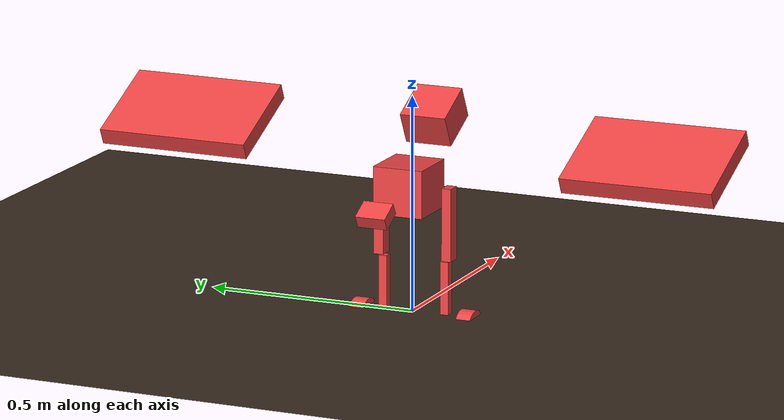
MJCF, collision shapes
<mujoco model="walking eagle we11 get-up pose alignment">
  <include file="we11.xml" />

  <statistic center="0 0 0.18" extent="0.8" />
  <visual>
    <headlight diffuse="0.6 0.6 0.6" ambient="0.3 0.3 0.3" specular="0 0 0" />
    <rgba haze="0.15 0.25 0.35 1" />
    <global azimuth="90" elevation="-10" />
  </visual>

  <asset>
    <texture type="skybox" builtin="gradient" rgb1="0.3 0.5 0.7" rgb2="0 0 0" width="512" height="3072" />
    <texture type="2d" name="getup_groundplane" builtin="checker" mark="edge" rgb1="0.28 0.22 0.16" rgb2="0.18 0.13 0.09" markrgb="0.8 0.8 0.8" width="300" height="300" />
    <material name="getup_groundplane" texture="getup_groundplane" texuniform="true" texrepeat="5 5" reflectance="0.1" />
  </asset>

  <worldbody>
    <light pos="0 0 1.5" dir="0 0 -1" directional="true" />
    <geom name="floor" size="0 0 0.05" type="plane" material="getup_groundplane" friction="1.0 0.005 0.0001" />

    <!-- Photo-like side view: robot forward (+X) appears on the left. -->
    <camera name="getup_side" pos="0 1.0 0.22" xyaxes="-1 0 0 0 0 1" />
    <camera name="getup_front" pos="1.0 0 0.22" xyaxes="0 1 0 0 0 1" />
  </worldbody>

  <keyframe>
    <!--
      Solved against the current reviewed collision geometry so the shoulder
      and both wheels start 0.5 mm inside the floor contact margin together.
    -->
    <key
      name="getup_start_v2"
      qpos="0 0 0.153467390616 0.791655677986 0 0.610967501191 0 -0.13 -2.522524368 0 -0.13 -2.522524368 0 0 0"
      ctrl="0 0 0 0 0 0 0 0"
    />
  </keyframe>
</mujoco>

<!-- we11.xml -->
<mujoco model="walking_eagle_we11_third">
  <compiler angle="radian" meshdir="meshes_lod" autolimits="true" inertiafromgeom="false" />
  <option timestep="0.001" gravity="0.0 0.0 -9.81" integrator="RK4" />
  <asset>
    <mesh name="base_link_part_00" file="base_link_part_00.STL" />
    <mesh name="base_link_part_01" file="base_link_part_01.STL" />
    <mesh name="base_link_part_02" file="base_link_part_02.STL" />
    <mesh name="base_link_part_03" file="base_link_part_03.STL" />
    <mesh name="base_link_part_04" file="base_link_part_04.STL" />
    <material name="base_link_material" rgba="0.75294 0.75294 0.75294 1.0" specular="0" />
    <mesh name="left_thigh_link" file="left_thigh_link.STL" />
    <material name="left_thigh_link_material" rgba="1.0 1.0 1.0 1.0" specular="0" />
    <mesh name="left_calf_link" file="left_calf_link.STL" />
    <material name="left_calf_link_material" rgba="1.0 0.94902 0.9098 1.0" specular="0" />
    <mesh name="left_foot_link" file="left_foot_link.STL" />
    <material name="left_foot_link_material" rgba="0.36863 0.36863 0.36863 1.0" specular="0" />
    <mesh name="right_thigh_link" file="right_thigh_link.STL" />
    <material name="right_thigh_link_material" rgba="0.86667 0.9098 1.0 1.0" specular="0" />
    <mesh name="right_calf_link" file="right_calf_link.STL" />
    <material name="right_calf_link_material" rgba="1.0 0.94902 0.9098 1.0" specular="0" />
    <mesh name="right_foot_link" file="right_foot_link.STL" />
    <material name="right_foot_link_material" rgba="0.36863 0.36863 0.36863 1.0" specular="0" />
    <mesh name="left_wing_link" file="left_wing_link.STL" />
    <material name="left_wing_link_material" rgba="0.79216 0.81961 0.93333 1.0" specular="0" />
    <mesh name="right_wing_link" file="right_wing_link.STL" />
    <material name="right_wing_link_material" rgba="0.79216 0.81961 0.93333 1.0" specular="0" />
    <mesh name="U1_link" file="U1_link.STL" />
    <material name="U1_link_material" rgba="0.29804 0.29804 0.29804 1.0" specular="0" />
    <mesh name="U2_link" file="U2_link.STL" />
    <material name="U2_link_material" rgba="1.0 1.0 1.0 1.0" specular="0" />
  </asset>
  <worldbody>
    <body name="base_link" pos="0 0 0.30">
      <inertial pos="0.04588263 3.771e-05 0.04501853" mass="1.79744014" fullinertia="0.01509778 0.02513929 0.01378862 1.56e-06 -0.01047094 -5.9e-07" />
      <freejoint name="base_freejoint" />
      <site name="imu" pos="0 0 0" />
      <geom name="base_link_visual_00" type="mesh" mesh="base_link_part_00" material="base_link_material" group="1" contype="0" conaffinity="0" />
      <geom name="base_link_visual_01" type="mesh" mesh="base_link_part_01" material="base_link_material" group="1" contype="0" conaffinity="0" />
      <geom name="base_link_visual_02" type="mesh" mesh="base_link_part_02" material="base_link_material" group="1" contype="0" conaffinity="0" />
      <geom name="base_link_visual_03" type="mesh" mesh="base_link_part_03" material="base_link_material" group="1" contype="0" conaffinity="0" />
      <geom name="base_link_visual_04" type="mesh" mesh="base_link_part_04" material="base_link_material" group="1" contype="0" conaffinity="0" />
      <geom name="base_link_collision" type="box" pos="-0.019765 0 -0.0045" rgba="0.9373 0.2667 0.2667 0.25" group="3" contype="1" conaffinity="1" size="0.063985 0.05915 0.055" />
      <site type="box" pos="-0.019765 0 -0.0045" rgba="1 0 0 0.15" size="0.063985 0.05915 0.055" name="base_link_touch_site" />
      <geom name="base_shoulder_collision" type="box" pos="0.123 0.0 0.129" quat="0.687569468466653 0.687569243772496 -0.165070861844035 0.165070807899729" rgba="0.9373 0.2667 0.2667 0.25" group="3" contype="1" conaffinity="1" size="0.055 0.04 0.055" />
      <site type="box" pos="0.123 0.0 0.129" quat="0.687569468466653 0.687569243772496 -0.165070861844035 0.165070807899729" rgba="1 0 0 0.15" size="0.055 0.04 0.055" name="base_shoulder_touch_site" />

      <body name="left_thigh_link" pos="0.01525 0.0558499999999976 -0.0431991909058736" quat="0.707106781186546 -0.707106781186549 0 0">
        <inertial pos="-0.00056472 0.01408423 0.04339388" mass="0.4724629" fullinertia="0.00084403 0.00023291 0.00069749 8.5e-06 -6.24e-06 0.00015111" />
        <joint name="left_thigh_joint" type="hinge" axis="0.0 0.0 1.0" damping="2.3658001235049574e-06" frictionloss="9.003633786813792e-06" armature="0.0045092746608505355" limited="true" range="-0.13 1.57" />
        <geom name="left_thigh_link_visual" type="mesh" mesh="left_thigh_link" material="left_thigh_link_material" group="1" contype="0" conaffinity="0" />
        <geom name="left_thigh_collision" type="box" pos="-0.000013 0.047495 0.0274" rgba="0.9373 0.2667 0.2667 0.25" group="3" contype="1" conaffinity="1" size="0.016454 0.0842 0.0114" />
        <site type="box" pos="-0.000013 0.047495 0.0274" rgba="1 0 0 0.15" size="0.016454 0.0842 0.0114" name="left_thigh_touch_site" />
        <body name="left_calf_link" pos="0 0.135800809094126 0.0199999999999967">
          <inertial pos="-2.777e-05 0.12275622 0.01133502" mass="0.30875" fullinertia="0.00078788 5.504e-05 0.00077188 3.9e-07 -1e-07 -9.686e-05" />
          <joint name="left_calf_joint" type="hinge" axis="0.0 0.0 1.0" damping="1.7025403002922656e-05" frictionloss="0.20614840564125578" armature="0.0056654868268008396" limited="true" range="-2.522524368 -1.285784060" />
          <geom name="left_calf_link_visual" type="mesh" mesh="left_calf_link" material="left_calf_link_material" group="1" contype="0" conaffinity="0" />
          <geom name="left_calf_shaft_collision" type="box" pos="0.0 0.078362 0.0" rgba="0.9373 0.2667 0.2667 0.25" group="3" contype="1" conaffinity="1" size="0.01 0.078638 0.01" />
          <site type="box" pos="0.0 0.078362 0.0" rgba="1 0 0 0.15" size="0.01 0.078638 0.01" name="left_calf_shaft_touch_site" />
          <body name="left_foot_link" pos="0 0.149999999999687 0.0572000000000056">
            <inertial pos="-6.05e-06 3.53e-06 -0.00262162" mass="0.12784" fullinertia="7.506e-05 7.507e-05 0.00012118 1e-08 1e-08 0.0" />
            <joint name="left_foot_joint" type="hinge" axis="0.0 0.0 1.0" damping="0.0" frictionloss="0.0" armature="0.0008" limited="false" />
            <geom name="left_foot_link_visual" type="mesh" mesh="left_foot_link" material="left_foot_link_material" group="1" contype="0" conaffinity="0" />
            <geom name="left_foot_collision" type="cylinder" pos="0.0 0.0 -0.001914845" rgba="0.9373 0.2667 0.2667 0.25" group="3" contype="1" conaffinity="1" size="0.0425 0.017285155" />
            <site type="cylinder" pos="0.0 0.0 -0.001914845" rgba="1 0 0 0.15" size="0.0425 0.017285155" name="left_foot_touch_site" />
          </body>
        </body>
      </body>

      <body name="right_thigh_link" pos="0.0152499999999884 -0.05585 -0.0431991909058702" quat="0.707106781186546 0.707106781186549 0 0">
        <inertial pos="-0.0005647199999883994 -0.014084230000003398 0.043393879999997616" mass="0.4724629" fullinertia="0.00084403 0.00023291 0.00069749 -8.5e-06 -6.24e-06 -0.00015111" />
        <joint name="right_thigh_joint" type="hinge" axis="0.0 0.0 -1.0" damping="2.3658001235049574e-06" frictionloss="9.003633786813792e-06" armature="0.0045092746608505355" limited="true" range="-0.13 1.57" />
        <geom name="right_thigh_link_visual" type="mesh" mesh="right_thigh_link" material="right_thigh_link_material" group="1" contype="0" conaffinity="0" />
        <geom name="right_thigh_collision" type="box" pos="-0.000013 -0.047495 0.0274" rgba="0.9373 0.2667 0.2667 0.25" group="3" contype="1" conaffinity="1" size="0.016454 0.0842 0.0114" />
        <site type="box" pos="-0.000013 -0.047495 0.0274" rgba="1 0 0 0.15" size="0.016454 0.0842 0.0114" name="right_thigh_touch_site" />
        <body name="right_calf_link" pos="0 -0.13580080909413 0.02">
          <inertial pos="-2.7769999988399782e-05 -0.12275621999999943 0.011335019999994296" mass="0.30875" fullinertia="0.00078788 5.504e-05 0.00077188 -3.9e-07 -1e-07 9.686e-05" />
          <joint name="right_calf_joint" type="hinge" axis="0.0 0.0 -1.0" damping="1.7025403002922656e-05" frictionloss="0.20614840564125578" armature="0.0056654868268008396" limited="true" range="-2.522524368 -1.285784060" />
          <geom name="right_calf_link_visual" type="mesh" mesh="right_calf_link" material="right_calf_link_material" group="1" contype="0" conaffinity="0" />
          <geom name="right_calf_shaft_collision" type="box" pos="0.0 -0.078362 0.0" rgba="0.9373 0.2667 0.2667 0.25" group="3" contype="1" conaffinity="1" size="0.01 0.078638 0.01" />
          <site type="box" pos="0.0 -0.078362 0.0" rgba="1 0 0 0.15" size="0.01 0.078638 0.01" name="right_calf_shaft_touch_site" />
          <body name="right_foot_link" pos="0 -0.150000000000294 0.0572000000000011" quat="0 1 0 0">
            <inertial pos="-6.0499999884004035e-06 3.529999392349453e-06 0.0026216200000012124" mass="0.12784" fullinertia="7.506e-05 7.507e-05 0.00012118 1.0000000000000032e-08 -9.999999999999969e-09 0.0" />
            <joint name="right_foot_joint" type="hinge" axis="0.0 0.0 1.0" damping="0.0" frictionloss="0.0" armature="0.0008" limited="false" />
            <geom name="right_foot_link_visual" type="mesh" mesh="right_foot_link" material="right_foot_link_material" group="1" contype="0" conaffinity="0" />
            <geom name="right_foot_collision" type="cylinder" pos="0.0 0.0 0.001914845" rgba="0.9373 0.2667 0.2667 0.25" group="3" contype="1" conaffinity="1" size="0.0425 0.017285155" />
            <site type="cylinder" pos="0.0 0.0 0.001914845" rgba="1 0 0 0.15" size="0.0425 0.017285155" name="right_foot_touch_site" />
          </body>
        </body>
      </body>

      <body name="left_wing_link" pos="0.14789 0.031025 0.15872" quat="0.69887716812071 -0.0444767255712987 0.698877106045074 -0.145476167835476">
        <inertial pos="-0.04294591 0.29416066 -0.11926569" mass="0.06633" fullinertia="0.00448339 0.0013905 0.00414202 0.00104762 0.00028627 0.00046497" />
        <joint name="left_wing_joint" type="hinge" axis="0.46947 0 -0.88295" damping="6.925991655493124e-05" frictionloss="0.00039277340996955734" armature="0.0045092746608505355" limited="true" range="-1.5708 0" />
        <geom name="left_wing_link_visual" type="mesh" mesh="left_wing_link" material="left_wing_link_material" group="1" contype="0" conaffinity="0" />
        <geom name="left_wing_tip_collision" type="box" pos="-0.08 0.51 -0.19" quat="0.964382508866388 -0.0496204160201033 -0.210422565641917 0.152402541892309" rgba="0.9373 0.2667 0.2667 0.25" group="3" contype="1" conaffinity="1" size="0.02 0.18 0.115" />
        <site type="box" pos="-0.08 0.51 -0.19" quat="0.964382508866388 -0.0496204160201033 -0.210422565641917 0.152402541892309" rgba="1 0 0 0.15" size="0.02 0.18 0.115" name="left_wing_tip_touch_site" />
      </body>

      <body name="right_wing_link" pos="0.14789 -0.031025 0.15872" quat="0.69887716812071 0.0444767255712987 0.698877106045074 0.145476167835476">
        <inertial pos="-0.04294591 -0.29416066 -0.11926569" mass="0.06633" fullinertia="0.00448339 0.0013905 0.00414202 -0.00104762 0.00028627 -0.00046497" />
        <joint name="right_wing_joint" type="hinge" axis="-0.46947 0 0.88295" damping="6.925991655493124e-05" frictionloss="0.00039277340996955734" armature="0.0045092746608505355" limited="true" range="-1.5708 0" />
        <geom name="right_wing_link_visual" type="mesh" mesh="right_wing_link" material="right_wing_link_material" group="1" contype="0" conaffinity="0" />
        <geom name="right_wing_tip_collision" type="box" pos="-0.08 -0.51 -0.19" quat="0.964382508866388 0.0496204160201033 -0.210422565641917 -0.152402541892309" rgba="0.9373 0.2667 0.2667 0.25" group="3" contype="1" conaffinity="1" size="0.02 0.18 0.115" />
        <site type="box" pos="-0.08 -0.51 -0.19" quat="0.964382508866388 0.0496204160201033 -0.210422565641917 -0.152402541892309" rgba="1 0 0 0.15" size="0.02 0.18 0.115" name="right_wing_tip_touch_site" />
      </body>

      <body name="U1_link" pos="-0.2383 0.0067051 -0.038129" quat="0.686101615069737 -0.686104135266319 -0.171063547245306 -0.171064175597955">
        <inertial pos="0 0 -0.00665" mass="0.00162207" fullinertia="4e-08 4e-08 4e-08 0 0 0" />
        <geom name="U1_link_visual" type="mesh" mesh="U1_link" material="U1_link_material" group="1" contype="0" conaffinity="0" />
        <body name="U2_link" pos="0 -0.00673 -0.00665" quat="0.707105482511236 0.707108079859474 0 0">
          <inertial pos="-0.16198053 0.00053672 0.00551936" mass="0.0462933" fullinertia="0.00032768 0.00077081 0.0009803 1.95e-06 3.131e-05 4.5e-07" />
          <geom name="U2_link_visual" type="mesh" mesh="U2_link" material="U2_link_material" group="1" contype="0" conaffinity="0" />
          <geom name="U2_collision" type="box" pos="0.037 0 -0.015" rgba="0.9373 0.2667 0.2667 0.25" group="3" contype="1" conaffinity="1" size="0.027 0.0355 0.0150005" />
          <site type="box" pos="0.037 0 -0.015" rgba="1 0 0 0.15" size="0.027 0.0355 0.0150005" name="U2_touch_site" />
        </body>
      </body>
    </body>
  </worldbody>

  <actuator>
    <motor name="left_thigh_motor" joint="left_thigh_joint" ctrlrange="-5.5 5.5" />
    <motor name="left_calf_motor" joint="left_calf_joint" ctrlrange="-14 14" />
    <motor name="left_foot_motor" joint="left_foot_joint" ctrlrange="-5.5 5.5" />
    <motor name="right_thigh_motor" joint="right_thigh_joint" ctrlrange="-5.5 5.5" />
    <motor name="right_calf_motor" joint="right_calf_joint" ctrlrange="-14 14" />
    <motor name="right_foot_motor" joint="right_foot_joint" ctrlrange="-5.5 5.5" />
    <motor name="left_wing_motor" joint="left_wing_joint" ctrlrange="-5.5 5.5" />
    <motor name="right_wing_motor" joint="right_wing_joint" ctrlrange="-5.5 5.5" />
  </actuator>

  <sensor>
    <jointpos name="left_thigh_pos" joint="left_thigh_joint" />
    <jointpos name="left_calf_pos" joint="left_calf_joint" />
    <jointpos name="left_foot_pos" joint="left_foot_joint" />
    <jointpos name="right_thigh_pos" joint="right_thigh_joint" />
    <jointpos name="right_calf_pos" joint="right_calf_joint" />
    <jointpos name="right_foot_pos" joint="right_foot_joint" />
    <jointvel name="left_thigh_vel" joint="left_thigh_joint" />
    <jointvel name="left_calf_vel" joint="left_calf_joint" />
    <jointvel name="left_foot_vel" joint="left_foot_joint" />
    <jointvel name="right_thigh_vel" joint="right_thigh_joint" />
    <jointvel name="right_calf_vel" joint="right_calf_joint" />
    <jointvel name="right_foot_vel" joint="right_foot_joint" />
    <jointactuatorfrc name="left_thigh_torque" joint="left_thigh_joint" />
    <jointactuatorfrc name="left_calf_torque" joint="left_calf_joint" />
    <jointactuatorfrc name="left_foot_torque" joint="left_foot_joint" />
    <jointactuatorfrc name="right_thigh_torque" joint="right_thigh_joint" />
    <jointactuatorfrc name="right_calf_torque" joint="right_calf_joint" />
    <jointactuatorfrc name="right_foot_torque" joint="right_foot_joint" />
    <jointpos name="left_wing_pos" joint="left_wing_joint" />
    <jointpos name="right_wing_pos" joint="right_wing_joint" />
    <jointvel name="left_wing_vel_sensor" joint="left_wing_joint" />
    <jointvel name="right_wing_vel_sensor" joint="right_wing_joint" />
    <framequat name="imu_quat" objtype="site" objname="imu" noise="0.0" />
    <gyro name="imu_gyro" site="imu" noise="0.0" />
    <accelerometer name="imu_acc" site="imu" />
    <gyro name="gyro" site="imu" />
    <velocimeter name="local_linvel" site="imu" />
    <framexaxis name="xvector" objtype="site" objname="imu" />
    <frameyaxis name="yvector" objtype="site" objname="imu" />
    <framezaxis name="upvector" objtype="site" objname="imu" />
    <touch name="base_link_touch" site="base_link_touch_site" />
    <touch name="base_shoulder_touch" site="base_shoulder_touch_site" />
    <touch name="left_thigh_touch" site="left_thigh_touch_site" />
    <touch name="left_calf_shaft_touch" site="left_calf_shaft_touch_site" />
    <touch name="left_foot_touch" site="left_foot_touch_site" />
    <touch name="right_thigh_touch" site="right_thigh_touch_site" />
    <touch name="right_calf_shaft_touch" site="right_calf_shaft_touch_site" />
    <touch name="right_foot_touch" site="right_foot_touch_site" />
    <touch name="left_wing_tip_touch" site="left_wing_tip_touch_site" />
    <touch name="right_wing_tip_touch" site="right_wing_tip_touch_site" />
    <touch name="U2_touch" site="U2_touch_site" />
  </sensor>

  <contact>
    <exclude body1="base_link" body2="left_thigh_link" />
    <exclude body1="base_link" body2="left_calf_link" />
    <exclude body1="base_link" body2="left_foot_link" />
    <exclude body1="base_link" body2="right_thigh_link" />
    <exclude body1="base_link" body2="right_calf_link" />
    <exclude body1="base_link" body2="right_foot_link" />
    <exclude body1="base_link" body2="left_wing_link" />
    <exclude body1="base_link" body2="right_wing_link" />
    <exclude body1="base_link" body2="U1_link" />
    <exclude body1="base_link" body2="U2_link" />
    <exclude body1="left_thigh_link" body2="left_calf_link" />
    <exclude body1="left_thigh_link" body2="left_foot_link" />
    <exclude body1="left_thigh_link" body2="right_thigh_link" />
    <exclude body1="left_thigh_link" body2="right_calf_link" />
    <exclude body1="left_thigh_link" body2="right_foot_link" />
    <exclude body1="left_thigh_link" body2="left_wing_link" />
    <exclude body1="left_thigh_link" body2="right_wing_link" />
    <exclude body1="left_thigh_link" body2="U1_link" />
    <exclude body1="left_thigh_link" body2="U2_link" />
    <exclude body1="left_calf_link" body2="left_foot_link" />
    <exclude body1="left_calf_link" body2="right_thigh_link" />
    <exclude body1="left_calf_link" body2="right_calf_link" />
    <exclude body1="left_calf_link" body2="right_foot_link" />
    <exclude body1="left_calf_link" body2="left_wing_link" />
    <exclude body1="left_calf_link" body2="right_wing_link" />
    <exclude body1="left_calf_link" body2="U1_link" />
    <exclude body1="left_calf_link" body2="U2_link" />
    <exclude body1="left_foot_link" body2="right_thigh_link" />
    <exclude body1="left_foot_link" body2="right_calf_link" />
    <exclude body1="left_foot_link" body2="right_foot_link" />
    <exclude body1="left_foot_link" body2="left_wing_link" />
    <exclude body1="left_foot_link" body2="right_wing_link" />
    <exclude body1="left_foot_link" body2="U1_link" />
    <exclude body1="left_foot_link" body2="U2_link" />
    <exclude body1="right_thigh_link" body2="right_calf_link" />
    <exclude body1="right_thigh_link" body2="right_foot_link" />
    <exclude body1="right_thigh_link" body2="left_wing_link" />
    <exclude body1="right_thigh_link" body2="right_wing_link" />
    <exclude body1="right_thigh_link" body2="U1_link" />
    <exclude body1="right_thigh_link" body2="U2_link" />
    <exclude body1="right_calf_link" body2="right_foot_link" />
    <exclude body1="right_calf_link" body2="left_wing_link" />
    <exclude body1="right_calf_link" body2="right_wing_link" />
    <exclude body1="right_calf_link" body2="U1_link" />
    <exclude body1="right_calf_link" body2="U2_link" />
    <exclude body1="right_foot_link" body2="left_wing_link" />
    <exclude body1="right_foot_link" body2="right_wing_link" />
    <exclude body1="right_foot_link" body2="U1_link" />
    <exclude body1="right_foot_link" body2="U2_link" />
    <exclude body1="left_wing_link" body2="right_wing_link" />
    <exclude body1="left_wing_link" body2="U1_link" />
    <exclude body1="left_wing_link" body2="U2_link" />
    <exclude body1="right_wing_link" body2="U1_link" />
    <exclude body1="right_wing_link" body2="U2_link" />
    <exclude body1="U1_link" body2="U2_link" />
  </contact>
</mujoco>
